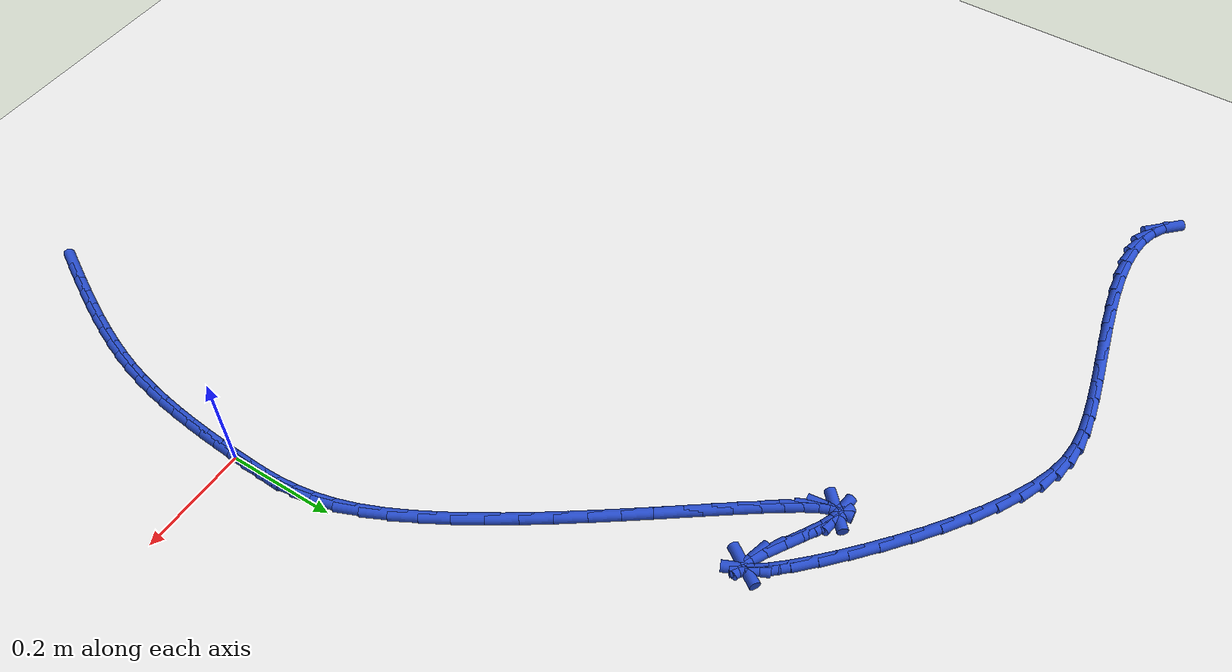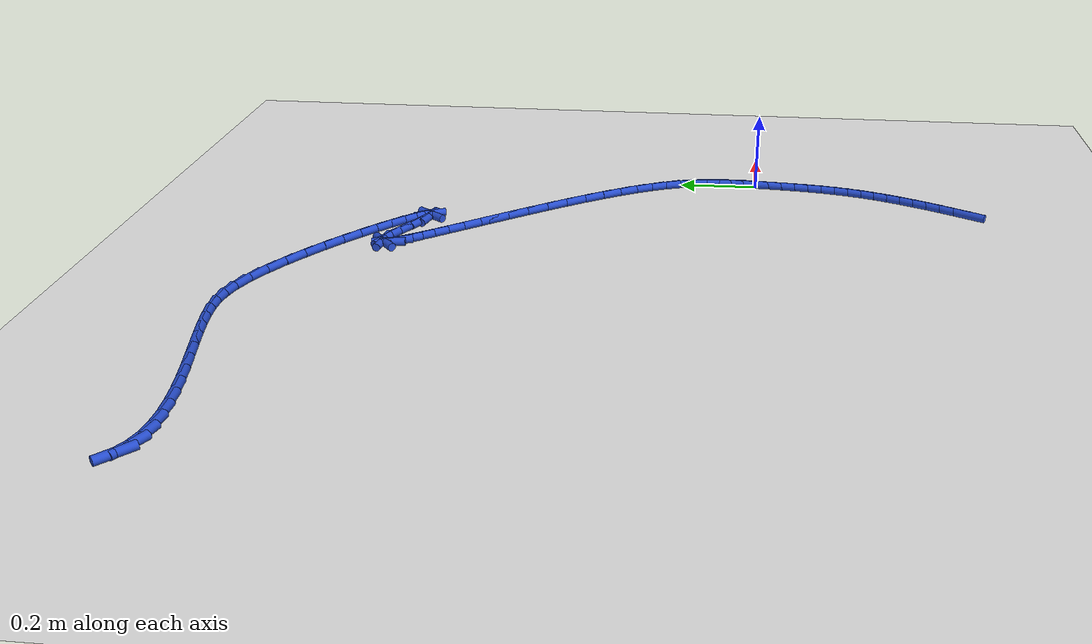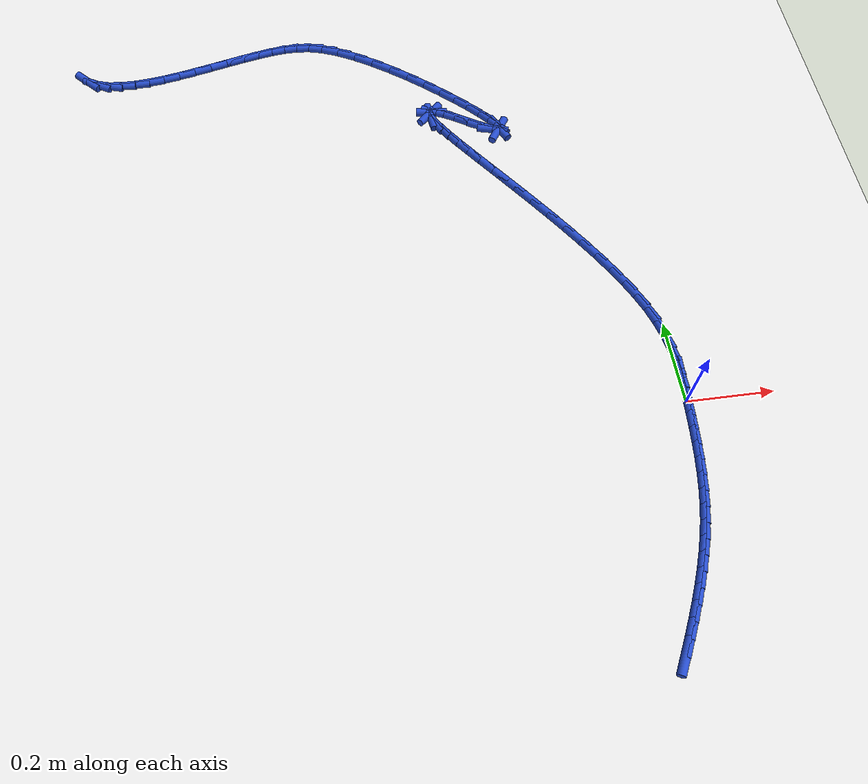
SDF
<sdf version="1.6">
 <world name="default">
  <model name="ground_plane">
   <static>1</static>
   <link name="link">
    <collision name="collision">
     <geometry><plane><normal>0 0 1</normal><size>100 100</size></plane></geometry>
     <surface><friction><ode><mu>100</mu><mu2>50</mu2></ode></friction></surface>
    </collision>
    <visual name="visual">
     <cast_shadows>0</cast_shadows>
     <geometry><plane><normal>0 0 1</normal><size>100 100</size></plane></geometry>
     <material>
      <script><uri>file://media/materials/scripts/gazebo.material</uri><name>Gazebo/WhiteGlow</name></script>
     </material>
    </visual>
   </link>
  </model>
  <model name="line">
   <link name="link_0">
    <pose>8.673617379884035e-18 6.938893903907228e-18 0.01 0 1.57 1.523138118637967</pose>
    <collision name="collision">
     <geometry><cylinder><radius>0.01</radius><length>0.08</length></cylinder></geometry>
    </collision>
    <visual name="visual">
     <material>
      <script><name>Gazebo/Blue</name><uri>file://media/materials/scripts/gazebo.material</uri></script>
     </material>
     <geometry><cylinder><radius>0.01</radius><length>0.08</length></cylinder></geometry>
    </visual>
   </link>
   <link name="link_1">
    <pose>0.001585584483484348 0.03324472141092138 0.01 0 1.57 1.5499778389324392</pose>
    <collision name="collision">
     <geometry><cylinder><radius>0.01</radius><length>0.08</length></cylinder></geometry>
    </collision>
    <visual name="visual">
     <material>
      <script><name>Gazebo/Blue</name><uri>file://media/materials/scripts/gazebo.material</uri></script>
     </material>
     <geometry><cylinder><radius>0.01</radius><length>0.08</length></cylinder></geometry>
    </visual>
   </link>
   <link name="link_2">
    <pose>0.002270491347331482 0.06613894106540857 0.01 0 1.57 -1.5463468351426486</pose>
    <collision name="collision">
     <geometry><cylinder><radius>0.01</radius><length>0.08</length></cylinder></geometry>
    </collision>
    <visual name="visual">
     <material>
      <script><name>Gazebo/Blue</name><uri>file://media/materials/scripts/gazebo.material</uri></script>
     </material>
     <geometry><cylinder><radius>0.01</radius><length>0.08</length></cylinder></geometry>
    </visual>
   </link>
   <link name="link_3">
    <pose>0.0014635920974431383 0.09913506519120466 0.01 0 1.57 -1.4848743740156531</pose>
    <collision name="collision">
     <geometry><cylinder><radius>0.01</radius><length>0.08</length></cylinder></geometry>
    </collision>
    <visual name="visual">
     <material>
      <script><name>Gazebo/Blue</name><uri>file://media/materials/scripts/gazebo.material</uri></script>
     </material>
     <geometry><cylinder><radius>0.01</radius><length>0.08</length></cylinder></geometry>
    </visual>
   </link>
   <link name="link_4">
    <pose>-0.001426241760278957 0.13268550001605264 0.01 0 1.57 -1.4111606628722124</pose>
    <collision name="collision">
     <geometry><cylinder><radius>0.01</radius><length>0.08</length></cylinder></geometry>
    </collision>
    <visual name="visual">
     <material>
      <script><name>Gazebo/Blue</name><uri>file://media/materials/scripts/gazebo.material</uri></script>
     </material>
     <geometry><cylinder><radius>0.01</radius><length>0.08</length></cylinder></geometry>
    </visual>
   </link>
   <link name="link_5">
    <pose>-0.0069901387199330835 0.16724265176769548 0.01 0 1.57 -1.3303954426050388</pose>
    <collision name="collision">
     <geometry><cylinder><radius>0.01</radius><length>0.08</length></cylinder></geometry>
    </collision>
    <visual name="visual">
     <material>
      <script><name>Gazebo/Blue</name><uri>file://media/materials/scripts/gazebo.material</uri></script>
     </material>
     <geometry><cylinder><radius>0.01</radius><length>0.08</length></cylinder></geometry>
    </visual>
   </link>
   <link name="link_6">
    <pose>-0.01581922727561751 0.20325892667387624 0.01 0 1.57 -1.2480303315702033</pose>
    <collision name="collision">
     <geometry><cylinder><radius>0.01</radius><length>0.08</length></cylinder></geometry>
    </collision>
    <visual name="visual">
     <material>
      <script><name>Gazebo/Blue</name><uri>file://media/materials/scripts/gazebo.material</uri></script>
     </material>
     <geometry><cylinder><radius>0.01</radius><length>0.08</length></cylinder></geometry>
    </visual>
   </link>
   <link name="link_7">
    <pose>-0.028504635921430512 0.24118673096233786 0.01 0 1.57 -1.170263766637879</pose>
    <collision name="collision">
     <geometry><cylinder><radius>0.01</radius><length>0.08</length></cylinder></geometry>
    </collision>
    <visual name="visual">
     <material>
      <script><name>Gazebo/Blue</name><uri>file://media/materials/scripts/gazebo.material</uri></script>
     </material>
     <geometry><cylinder><radius>0.01</radius><length>0.08</length></cylinder></geometry>
    </visual>
   </link>
   <link name="link_8">
    <pose>-0.045530404801527875 0.28139674451726765 0.01 0 1.57 -1.108227529056862</pose>
    <collision name="collision">
     <geometry><cylinder><radius>0.01</radius><length>0.08</length></cylinder></geometry>
    </collision>
    <visual name="visual">
     <material>
      <script><name>Gazebo/Blue</name><uri>file://media/materials/scripts/gazebo.material</uri></script>
     </material>
     <geometry><cylinder><radius>0.01</radius><length>0.08</length></cylinder></geometry>
    </visual>
   </link>
   <link name="link_9">
    <pose>-0.0666113562889491 0.32367260525362546 0.01 0 1.57 -1.0612071020007114</pose>
    <collision name="collision">
     <geometry><cylinder><radius>0.01</radius><length>0.08</length></cylinder></geometry>
    </collision>
    <visual name="visual">
     <material>
      <script><name>Gazebo/Blue</name><uri>file://media/materials/scripts/gazebo.material</uri></script>
     </material>
     <geometry><cylinder><radius>0.01</radius><length>0.08</length></cylinder></geometry>
    </visual>
   </link>
   <link name="link_10">
    <pose>-0.09112605837543512 0.3675413326857432 0.01 0 1.57 -1.0249504982867321</pose>
    <collision name="collision">
     <geometry><cylinder><radius>0.01</radius><length>0.08</length></cylinder></geometry>
    </collision>
    <visual name="visual">
     <material>
      <script><name>Gazebo/Blue</name><uri>file://media/materials/scripts/gazebo.material</uri></script>
     </material>
     <geometry><cylinder><radius>0.01</radius><length>0.08</length></cylinder></geometry>
    </visual>
   </link>
   <link name="link_11">
    <pose>-0.11845166703816948 0.41252886872439537 0.01 0 1.57 -0.9966939153665987</pose>
    <collision name="collision">
     <geometry><cylinder><radius>0.01</radius><length>0.08</length></cylinder></geometry>
    </collision>
    <visual name="visual">
     <material>
      <script><name>Gazebo/Blue</name><uri>file://media/materials/scripts/gazebo.material</uri></script>
     </material>
     <geometry><cylinder><radius>0.01</radius><length>0.08</length></cylinder></geometry>
    </visual>
   </link>
   <link name="link_12">
    <pose>-0.14796533825433575 0.4581611552803567 0.01 0 1.57 -0.9746226463821942</pose>
    <collision name="collision">
     <geometry><cylinder><radius>0.01</radius><length>0.08</length></cylinder></geometry>
    </collision>
    <visual name="visual">
     <material>
      <script><name>Gazebo/Blue</name><uri>file://media/materials/scripts/gazebo.material</uri></script>
     </material>
     <geometry><cylinder><radius>0.01</radius><length>0.08</length></cylinder></geometry>
    </visual>
   </link>
   <link name="link_13">
    <pose>-0.1790442280011174 0.5039641342644017 0.01 0 1.57 -0.9575446194777869</pose>
    <collision name="collision">
     <geometry><cylinder><radius>0.01</radius><length>0.08</length></cylinder></geometry>
    </collision>
    <visual name="visual">
     <material>
      <script><name>Gazebo/Blue</name><uri>file://media/materials/scripts/gazebo.material</uri></script>
     </material>
     <geometry><cylinder><radius>0.01</radius><length>0.08</length></cylinder></geometry>
    </visual>
   </link>
   <link name="link_14">
    <pose>-0.21106549225569787 0.549463747587305 0.01 0 1.57 -0.9447026504581928</pose>
    <collision name="collision">
     <geometry><cylinder><radius>0.01</radius><length>0.08</length></cylinder></geometry>
    </collision>
    <visual name="visual">
     <material>
      <script><name>Gazebo/Blue</name><uri>file://media/materials/scripts/gazebo.material</uri></script>
     </material>
     <geometry><cylinder><radius>0.01</radius><length>0.08</length></cylinder></geometry>
    </visual>
   </link>
   <link name="link_15">
    <pose>-0.24340628699526076 0.5941859371598409 0.01 0 1.57 -0.935673681147409</pose>
    <collision name="collision">
     <geometry><cylinder><radius>0.01</radius><length>0.08</length></cylinder></geometry>
    </collision>
    <visual name="visual">
     <material>
      <script><name>Gazebo/Blue</name><uri>file://media/materials/scripts/gazebo.material</uri></script>
     </material>
     <geometry><cylinder><radius>0.01</radius><length>0.08</length></cylinder></geometry>
    </visual>
   </link>
   <link name="link_16">
    <pose>-0.2754437681969896 0.6376566448927845 0.01 0 1.57 -0.9303307999203727</pose>
    <collision name="collision">
     <geometry><cylinder><radius>0.01</radius><length>0.08</length></cylinder></geometry>
    </collision>
    <visual name="visual">
     <material>
      <script><name>Gazebo/Blue</name><uri>file://media/materials/scripts/gazebo.material</uri></script>
     </material>
     <geometry><cylinder><radius>0.01</radius><length>0.08</length></cylinder></geometry>
    </visual>
   </link>
   <link name="link_17">
    <pose>-0.30655509183806806 0.6794018126969104 0.01 0 1.57 -0.928864554065546</pose>
    <collision name="collision">
     <geometry><cylinder><radius>0.01</radius><length>0.08</length></cylinder></geometry>
    </collision>
    <visual name="visual">
     <material>
      <script><name>Gazebo/Blue</name><uri>file://media/materials/scripts/gazebo.material</uri></script>
     </material>
     <geometry><cylinder><radius>0.01</radius><length>0.08</length></cylinder></geometry>
    </visual>
   </link>
   <link name="link_18">
    <pose>-0.33611741389567934 0.7189473824829925 0.01 0 1.57 -0.9318838796647777</pose>
    <collision name="collision">
     <geometry><cylinder><radius>0.01</radius><length>0.08</length></cylinder></geometry>
    </collision>
    <visual name="visual">
     <material>
      <script><name>Gazebo/Blue</name><uri>file://media/materials/scripts/gazebo.material</uri></script>
     </material>
     <geometry><cylinder><radius>0.01</radius><length>0.08</length></cylinder></geometry>
    </visual>
   </link>
   <link name="link_19">
    <pose>-0.3635078903470071 0.7558192961618062 0.01 0 1.57 -0.9406612782921225</pose>
    <collision name="collision">
     <geometry><cylinder><radius>0.01</radius><length>0.08</length></cylinder></geometry>
    </collision>
    <visual name="visual">
     <material>
      <script><name>Gazebo/Blue</name><uri>file://media/materials/scripts/gazebo.material</uri></script>
     </material>
     <geometry><cylinder><radius>0.01</radius><length>0.08</length></cylinder></geometry>
    </visual>
   </link>
   <link name="link_20">
    <pose>-0.3881036771692349 0.7895434956441257 0.01 0 1.57 -0.9576986605762746</pose>
    <collision name="collision">
     <geometry><cylinder><radius>0.01</radius><length>0.08</length></cylinder></geometry>
    </collision>
    <visual name="visual">
     <material>
      <script><name>Gazebo/Blue</name><uri>file://media/materials/scripts/gazebo.material</uri></script>
     </material>
     <geometry><cylinder><radius>0.01</radius><length>0.08</length></cylinder></geometry>
    </visual>
   </link>
   <link name="link_21">
    <pose>-0.4092819303395462 0.8196459228407256 0.01 0 1.57 -0.9881328618419942</pose>
    <collision name="collision">
     <geometry><cylinder><radius>0.01</radius><length>0.08</length></cylinder></geometry>
    </collision>
    <visual name="visual">
     <material>
      <script><name>Gazebo/Blue</name><uri>file://media/materials/scripts/gazebo.material</uri></script>
     </material>
     <geometry><cylinder><radius>0.01</radius><length>0.08</length></cylinder></geometry>
    </visual>
   </link>
   <link name="link_22">
    <pose>-0.4264198058351244 0.8456525196623805 0.01 0 1.57 -1.043769909391207</pose>
    <collision name="collision">
     <geometry><cylinder><radius>0.01</radius><length>0.08</length></cylinder></geometry>
    </collision>
    <visual name="visual">
     <material>
      <script><name>Gazebo/Blue</name><uri>file://media/materials/scripts/gazebo.material</uri></script>
     </material>
     <geometry><cylinder><radius>0.01</radius><length>0.08</length></cylinder></geometry>
    </visual>
   </link>
   <link name="link_23">
    <pose>-0.4388944596331535 0.8670892280198653 0.01 0 1.57 -1.1575283264766851</pose>
    <collision name="collision">
     <geometry><cylinder><radius>0.01</radius><length>0.08</length></cylinder></geometry>
    </collision>
    <visual name="visual">
     <material>
      <script><name>Gazebo/Blue</name><uri>file://media/materials/scripts/gazebo.material</uri></script>
     </material>
     <geometry><cylinder><radius>0.01</radius><length>0.08</length></cylinder></geometry>
    </visual>
   </link>
   <link name="link_24">
    <pose>-0.44608304771081664 0.8834819898239545 0.01 0 1.57 -1.4536608129962254</pose>
    <collision name="collision">
     <geometry><cylinder><radius>0.01</radius><length>0.08</length></cylinder></geometry>
    </collision>
    <visual name="visual">
     <material>
      <script><name>Gazebo/Blue</name><uri>file://media/materials/scripts/gazebo.material</uri></script>
     </material>
     <geometry><cylinder><radius>0.01</radius><length>0.08</length></cylinder></geometry>
    </visual>
   </link>
   <link name="link_25">
    <pose>-0.44736272604529714 0.8943567469854222 0.01 0 1.57 0.7489673832095932</pose>
    <collision name="collision">
     <geometry><cylinder><radius>0.01</radius><length>0.08</length></cylinder></geometry>
    </collision>
    <visual name="visual">
     <material>
      <script><name>Gazebo/Blue</name><uri>file://media/materials/scripts/gazebo.material</uri></script>
     </material>
     <geometry><cylinder><radius>0.01</radius><length>0.08</length></cylinder></geometry>
    </visual>
   </link>
   <link name="link_26">
    <pose>-0.44211065061377897 0.8992394414150439 0.01 0 1.57 -0.12694073009909124</pose>
    <collision name="collision">
     <geometry><cylinder><radius>0.01</radius><length>0.08</length></cylinder></geometry>
    </collision>
    <visual name="visual">
     <material>
      <script><name>Gazebo/Blue</name><uri>file://media/materials/scripts/gazebo.material</uri></script>
     </material>
     <geometry><cylinder><radius>0.01</radius><length>0.08</length></cylinder></geometry>
    </visual>
   </link>
   <link name="link_27">
    <pose>-0.42970397739344535 0.8976560150235933 0.01 0 1.57 -0.3995753435187933</pose>
    <collision name="collision">
     <geometry><cylinder><radius>0.01</radius><length>0.08</length></cylinder></geometry>
    </collision>
    <visual name="visual">
     <material>
      <script><name>Gazebo/Blue</name><uri>file://media/materials/scripts/gazebo.material</uri></script>
     </material>
     <geometry><cylinder><radius>0.01</radius><length>0.08</length></cylinder></geometry>
    </visual>
   </link>
   <link name="link_28">
    <pose>-0.40951986236147986 0.8891324097218452 0.01 0 1.57 -0.5057709338530939</pose>
    <collision name="collision">
     <geometry><cylinder><radius>0.01</radius><length>0.08</length></cylinder></geometry>
    </collision>
    <visual name="visual">
     <material>
      <script><name>Gazebo/Blue</name><uri>file://media/materials/scripts/gazebo.material</uri></script>
     </material>
     <geometry><cylinder><radius>0.01</radius><length>0.08</length></cylinder></geometry>
    </visual>
   </link>
   <link name="link_29">
    <pose>-0.3812875806829965 0.8734968210229603 0.01 0 1.57 -0.5407796485388793</pose>
    <collision name="collision">
     <geometry><cylinder><radius>0.01</radius><length>0.08</length></cylinder></geometry>
    </collision>
    <visual name="visual">
     <material>
      <script><name>Gazebo/Blue</name><uri>file://media/materials/scripts/gazebo.material</uri></script>
     </material>
     <geometry><cylinder><radius>0.01</radius><length>0.08</length></cylinder></geometry>
    </visual>
   </link>
   <link name="link_30">
    <pose>-0.34850060639415553 0.8538085738640765 0.01 0 1.57 -0.5353574790282457</pose>
    <collision name="collision">
     <geometry><cylinder><radius>0.01</radius><length>0.08</length></cylinder></geometry>
    </collision>
    <visual name="visual">
     <material>
      <script><name>Gazebo/Blue</name><uri>file://media/materials/scripts/gazebo.material</uri></script>
     </material>
     <geometry><cylinder><radius>0.01</radius><length>0.08</length></cylinder></geometry>
    </visual>
   </link>
   <link name="link_31">
    <pose>-0.3169332386560779 0.8350848177884911 0.01 0 1.57 -0.4781612451844935</pose>
    <collision name="collision">
     <geometry><cylinder><radius>0.01</radius><length>0.08</length></cylinder></geometry>
    </collision>
    <visual name="visual">
     <material>
      <script><name>Gazebo/Blue</name><uri>file://media/materials/scripts/gazebo.material</uri></script>
     </material>
     <geometry><cylinder><radius>0.01</radius><length>0.08</length></cylinder></geometry>
    </visual>
   </link>
   <link name="link_32">
    <pose>-0.2923798101428956 0.8223593662075089 0.01 0 1.57 -0.24977682648921742</pose>
    <collision name="collision">
     <geometry><cylinder><radius>0.01</radius><length>0.08</length></cylinder></geometry>
    </collision>
    <visual name="visual">
     <material>
      <script><name>Gazebo/Blue</name><uri>file://media/materials/scripts/gazebo.material</uri></script>
     </material>
     <geometry><cylinder><radius>0.01</radius><length>0.08</length></cylinder></geometry>
    </visual>
   </link>
   <link name="link_33">
    <pose>-0.2786245325676537 0.8188503369821315 0.01 0 1.57 0.9764913637129256</pose>
    <collision name="collision">
     <geometry><cylinder><radius>0.01</radius><length>0.08</length></cylinder></geometry>
    </collision>
    <visual name="visual">
     <material>
      <script><name>Gazebo/Blue</name><uri>file://media/materials/scripts/gazebo.material</uri></script>
     </material>
     <geometry><cylinder><radius>0.01</radius><length>0.08</length></cylinder></geometry>
    </visual>
   </link>
   <link name="link_34">
    <pose>-0.2751925252135136 0.8239287087598621 0.01 0 1.57 -1.132956064692277</pose>
    <collision name="collision">
     <geometry><cylinder><radius>0.01</radius><length>0.08</length></cylinder></geometry>
    </collision>
    <visual name="visual">
     <material>
      <script><name>Gazebo/Blue</name><uri>file://media/materials/scripts/gazebo.material</uri></script>
     </material>
     <geometry><cylinder><radius>0.01</radius><length>0.08</length></cylinder></geometry>
    </visual>
   </link>
   <link name="link_35">
    <pose>-0.2810660630108827 0.8364751214996956 0.01 0 1.57 -0.9276327409792565</pose>
    <collision name="collision">
     <geometry><cylinder><radius>0.01</radius><length>0.08</length></cylinder></geometry>
    </collision>
    <visual name="visual">
     <material>
      <script><name>Gazebo/Blue</name><uri>file://media/materials/scripts/gazebo.material</uri></script>
     </material>
     <geometry><cylinder><radius>0.01</radius><length>0.08</length></cylinder></geometry>
    </visual>
   </link>
   <link name="link_36">
    <pose>-0.2952274208901677 0.855370215160626 0.01 0 1.57 -0.8444428398833422</pose>
    <collision name="collision">
     <geometry><cylinder><radius>0.01</radius><length>0.08</length></cylinder></geometry>
    </collision>
    <visual name="visual">
     <material>
      <script><name>Gazebo/Blue</name><uri>file://media/materials/scripts/gazebo.material</uri></script>
     </material>
     <geometry><cylinder><radius>0.01</radius><length>0.08</length></cylinder></geometry>
    </visual>
   </link>
   <link name="link_37">
    <pose>-0.3166588737817755 0.8794946297016479 0.01 0 1.57 -0.7952435227738177</pose>
    <collision name="collision">
     <geometry><cylinder><radius>0.01</radius><length>0.08</length></cylinder></geometry>
    </collision>
    <visual name="visual">
     <material>
      <script><name>Gazebo/Blue</name><uri>file://media/materials/scripts/gazebo.material</uri></script>
     </material>
     <geometry><cylinder><radius>0.01</radius><length>0.08</length></cylinder></geometry>
    </visual>
   </link>
   <link name="link_38">
    <pose>-0.3443426966161134 0.9077290050817559 0.01 0 1.57 -0.7590026643309477</pose>
    <collision name="collision">
     <geometry><cylinder><radius>0.01</radius><length>0.08</length></cylinder></geometry>
    </collision>
    <visual name="visual">
     <material>
      <script><name>Gazebo/Blue</name><uri>file://media/materials/scripts/gazebo.material</uri></script>
     </material>
     <geometry><cylinder><radius>0.01</radius><length>0.08</length></cylinder></geometry>
    </visual>
   </link>
   <link name="link_39">
    <pose>-0.3772611643235882 0.9389539812599442 0.01 0 1.57 -0.7279492977358222</pose>
    <collision name="collision">
     <geometry><cylinder><radius>0.01</radius><length>0.08</length></cylinder></geometry>
    </collision>
    <visual name="visual">
     <material>
      <script><name>Gazebo/Blue</name><uri>file://media/materials/scripts/gazebo.material</uri></script>
     </material>
     <geometry><cylinder><radius>0.01</radius><length>0.08</length></cylinder></geometry>
    </visual>
   </link>
   <link name="link_40">
    <pose>-0.414396551834607 0.9720501981952072 0.01 0 1.57 -0.6981806495435944</pose>
    <collision name="collision">
     <geometry><cylinder><radius>0.01</radius><length>0.08</length></cylinder></geometry>
    </collision>
    <visual name="visual">
     <material>
      <script><name>Gazebo/Blue</name><uri>file://media/materials/scripts/gazebo.material</uri></script>
     </material>
     <geometry><cylinder><radius>0.01</radius><length>0.08</length></cylinder></geometry>
    </visual>
   </link>
   <link name="link_41">
    <pose>-0.45473113407957666 1.0058982958465397 0.01 0 1.57 -0.6670611653092716</pose>
    <collision name="collision">
     <geometry><cylinder><radius>0.01</radius><length>0.08</length></cylinder></geometry>
    </collision>
    <visual name="visual">
     <material>
      <script><name>Gazebo/Blue</name><uri>file://media/materials/scripts/gazebo.material</uri></script>
     </material>
     <geometry><cylinder><radius>0.01</radius><length>0.08</length></cylinder></geometry>
    </visual>
   </link>
   <link name="link_42">
    <pose>-0.4972471859889044 1.039378914172936 0.01 0 1.57 -0.6321818000430323</pose>
    <collision name="collision">
     <geometry><cylinder><radius>0.01</radius><length>0.08</length></cylinder></geometry>
    </collision>
    <visual name="visual">
     <material>
      <script><name>Gazebo/Blue</name><uri>file://media/materials/scripts/gazebo.material</uri></script>
     </material>
     <geometry><cylinder><radius>0.01</radius><length>0.08</length></cylinder></geometry>
    </visual>
   </link>
   <link name="link_43">
    <pose>-0.540926982492997 1.07137269313339 0.01 0 1.57 -0.5906890601484294</pose>
    <collision name="collision">
     <geometry><cylinder><radius>0.01</radius><length>0.08</length></cylinder></geometry>
    </collision>
    <visual name="visual">
     <material>
      <script><name>Gazebo/Blue</name><uri>file://media/materials/scripts/gazebo.material</uri></script>
     </material>
     <geometry><cylinder><radius>0.01</radius><length>0.08</length></cylinder></geometry>
    </visual>
   </link>
   <link name="link_44">
    <pose>-0.5847527985222611 1.1007602726868964 0.01 0 1.57 -0.5385267230611902</pose>
    <collision name="collision">
     <geometry><cylinder><radius>0.01</radius><length>0.08</length></cylinder></geometry>
    </collision>
    <visual name="visual">
     <material>
      <script><name>Gazebo/Blue</name><uri>file://media/materials/scripts/gazebo.material</uri></script>
     </material>
     <geometry><cylinder><radius>0.01</radius><length>0.08</length></cylinder></geometry>
    </visual>
   </link>
   <link name="link_45">
    <pose>-0.6277069090071045 1.12642229279245 0.01 0 1.57 -0.4691797618339758</pose>
    <collision name="collision">
     <geometry><cylinder><radius>0.01</radius><length>0.08</length></cylinder></geometry>
    </collision>
    <visual name="visual">
     <material>
      <script><name>Gazebo/Blue</name><uri>file://media/materials/scripts/gazebo.material</uri></script>
     </material>
     <geometry><cylinder><radius>0.01</radius><length>0.08</length></cylinder></geometry>
    </visual>
   </link>
   <link name="link_46">
    <pose>-0.6687715888779338 1.147239393409045 0.01 0 1.57 -0.3714641257997168</pose>
    <collision name="collision">
     <geometry><cylinder><radius>0.01</radius><length>0.08</length></cylinder></geometry>
    </collision>
    <visual name="visual">
     <material>
      <script><name>Gazebo/Blue</name><uri>file://media/materials/scripts/gazebo.material</uri></script>
     </material>
     <geometry><cylinder><radius>0.01</radius><length>0.08</length></cylinder></geometry>
    </visual>
   </link>
   <link name="link_47">
    <pose>-0.7069542159719195 1.162113378735111 0.01 0 1.57 -0.24112769476727797</pose>
    <collision name="collision">
     <geometry><cylinder><radius>0.01</radius><length>0.08</length></cylinder></geometry>
    </collision>
    <visual name="visual">
     <material>
      <script><name>Gazebo/Blue</name><uri>file://media/materials/scripts/gazebo.material</uri></script>
     </material>
     <geometry><cylinder><radius>0.01</radius><length>0.08</length></cylinder></geometry>
    </visual>
   </link>
   <link name="link_48">
    <pose>-0.7422736971313185 1.1707988722166913 0.01 0 1.57 -0.09955596365791529</pose>
    <collision name="collision">
     <geometry><cylinder><radius>0.01</radius><length>0.08</length></cylinder></geometry>
    </collision>
    <visual name="visual">
     <material>
      <script><name>Gazebo/Blue</name><uri>file://media/materials/scripts/gazebo.material</uri></script>
     </material>
     <geometry><cylinder><radius>0.01</radius><length>0.08</length></cylinder></geometry>
    </visual>
   </link>
   <link name="link_49">
    <pose>-0.7760839575784624 1.1741760501655636 0.01 0 1.57 0.028852323744959447</pose>
    <collision name="collision">
     <geometry><cylinder><radius>0.01</radius><length>0.08</length></cylinder></geometry>
    </collision>
    <visual name="visual">
     <material>
      <script><name>Gazebo/Blue</name><uri>file://media/materials/scripts/gazebo.material</uri></script>
     </material>
     <geometry><cylinder><radius>0.01</radius><length>0.08</length></cylinder></geometry>
    </visual>
   </link>
   <link name="link_50">
    <pose>-0.8098302889282178 1.1732021198216802 0.01 0 1.57 0.12370660788881764</pose>
    <collision name="collision">
     <geometry><cylinder><radius>0.01</radius><length>0.08</length></cylinder></geometry>
    </collision>
    <visual name="visual">
     <material>
      <script><name>Gazebo/Blue</name><uri>file://media/materials/scripts/gazebo.material</uri></script>
     </material>
     <geometry><cylinder><radius>0.01</radius><length>0.08</length></cylinder></geometry>
    </visual>
   </link>
   <link name="link_51">
    <pose>-0.8449579827954521 1.1688342884249954 0.01 0 1.57 0.17986273192217148</pose>
    <collision name="collision">
     <geometry><cylinder><radius>0.01</radius><length>0.08</length></cylinder></geometry>
    </collision>
    <visual name="visual">
     <material>
      <script><name>Gazebo/Blue</name><uri>file://media/materials/scripts/gazebo.material</uri></script>
     </material>
     <geometry><cylinder><radius>0.01</radius><length>0.08</length></cylinder></geometry>
    </visual>
   </link>
   <link name="link_52">
    <pose>-0.8826260631650705 1.1619851872863178 0.01 0 1.57 0.21252568031824093</pose>
    <collision name="collision">
     <geometry><cylinder><radius>0.01</radius><length>0.08</length></cylinder></geometry>
    </collision>
    <visual name="visual">
     <material>
      <script><name>Gazebo/Blue</name><uri>file://media/materials/scripts/gazebo.material</uri></script>
     </material>
     <geometry><cylinder><radius>0.01</radius><length>0.08</length></cylinder></geometry>
    </visual>
   </link>
   <link name="link_53">
    <pose>-0.9226241938450315 1.153354218919929 0.01 0 1.57 0.2302559881334819</pose>
    <collision name="collision">
     <geometry><cylinder><radius>0.01</radius><length>0.08</length></cylinder></geometry>
    </collision>
    <visual name="visual">
     <material>
      <script><name>Gazebo/Blue</name><uri>file://media/materials/scripts/gazebo.material</uri></script>
     </material>
     <geometry><cylinder><radius>0.01</radius><length>0.08</length></cylinder></geometry>
    </visual>
   </link>
   <link name="link_54">
    <pose>-0.9643330592238658 1.1435771019453427 0.01 0 1.57 0.23588753970900553</pose>
    <collision name="collision">
     <geometry><cylinder><radius>0.01</radius><length>0.08</length></cylinder></geometry>
    </collision>
    <visual name="visual">
     <material>
      <script><name>Gazebo/Blue</name><uri>file://media/materials/scripts/gazebo.material</uri></script>
     </material>
     <geometry><cylinder><radius>0.01</radius><length>0.08</length></cylinder></geometry>
    </visual>
   </link>
   <link name="link_55">
    <pose>-1.0071332711896268 1.1332895436927193 0.01 0 1.57 0.23066592869244337</pose>
    <collision name="collision">
     <geometry><cylinder><radius>0.01</radius><length>0.08</length></cylinder></geometry>
    </collision>
    <visual name="visual">
     <material>
      <script><name>Gazebo/Blue</name><uri>file://media/materials/scripts/gazebo.material</uri></script>
     </material>
     <geometry><cylinder><radius>0.01</radius><length>0.08</length></cylinder></geometry>
    </visual>
   </link>
   <link name="link_56">
    <pose>-1.0504054416303683 1.1231272514922208 0.01 0 1.57 0.2146446117185</pose>
    <collision name="collision">
     <geometry><cylinder><radius>0.01</radius><length>0.08</length></cylinder></geometry>
    </collision>
    <visual name="visual">
     <material>
      <script><name>Gazebo/Blue</name><uri>file://media/materials/scripts/gazebo.material</uri></script>
     </material>
     <geometry><cylinder><radius>0.01</radius><length>0.08</length></cylinder></geometry>
    </visual>
   </link>
   <link name="link_57">
    <pose>-1.093530182434144 1.1137259326740079 0.01 0 1.57 0.1867736046197251</pose>
    <collision name="collision">
     <geometry><cylinder><radius>0.01</radius><length>0.08</length></cylinder></geometry>
    </collision>
    <visual name="visual">
     <material>
      <script><name>Gazebo/Blue</name><uri>file://media/materials/scripts/gazebo.material</uri></script>
     </material>
     <geometry><cylinder><radius>0.01</radius><length>0.08</length></cylinder></geometry>
    </visual>
   </link>
   <link name="link_58">
    <pose>-1.1358881054890078 1.105721294568242 0.01 0 1.57 0.14474577143568657</pose>
    <collision name="collision">
     <geometry><cylinder><radius>0.01</radius><length>0.08</length></cylinder></geometry>
    </collision>
    <visual name="visual">
     <material>
      <script><name>Gazebo/Blue</name><uri>file://media/materials/scripts/gazebo.material</uri></script>
     </material>
     <geometry><cylinder><radius>0.01</radius><length>0.08</length></cylinder></geometry>
    </visual>
   </link>
   <link name="link_59">
    <pose>-1.1768598226830136 1.0997490445050842 0.01 0 1.57 0.08459320899463034</pose>
    <collision name="collision">
     <geometry><cylinder><radius>0.01</radius><length>0.08</length></cylinder></geometry>
    </collision>
    <visual name="visual">
     <material>
      <script><name>Gazebo/Blue</name><uri>file://media/materials/scripts/gazebo.material</uri></script>
     </material>
     <geometry><cylinder><radius>0.01</radius><length>0.08</length></cylinder></geometry>
    </visual>
   </link>
   <link name="link_60">
    <pose>-1.2158259459042147 1.0964448898146952 0.01 0 1.57 9.685646825418196e-06</pose>
    <collision name="collision">
     <geometry><cylinder><radius>0.01</radius><length>0.08</length></cylinder></geometry>
    </collision>
    <visual name="visual">
     <material>
      <script><name>Gazebo/Blue</name><uri>file://media/materials/scripts/gazebo.material</uri></script>
     </material>
     <geometry><cylinder><radius>0.01</radius><length>0.08</length></cylinder></geometry>
    </visual>
   </link>
   <link name="link_61">
    <pose>-1.2521670870406656 1.096444537827237 0.01 0 1.57 -0.11846214110581711</pose>
    <collision name="collision">
     <geometry><cylinder><radius>0.01</radius><length>0.08</length></cylinder></geometry>
    </collision>
    <visual name="visual">
     <material>
      <script><name>Gazebo/Blue</name><uri>file://media/materials/scripts/gazebo.material</uri></script>
     </material>
     <geometry><cylinder><radius>0.01</radius><length>0.08</length></cylinder></geometry>
    </visual>
   </link>
   <link name="link_62">
    <pose>-1.28526385798042 1.1003836958728703 0.01 0 1.57 -0.28341827992853147</pose>
    <collision name="collision">
     <geometry><cylinder><radius>0.01</radius><length>0.08</length></cylinder></geometry>
    </collision>
    <visual name="visual">
     <material>
      <script><name>Gazebo/Blue</name><uri>file://media/materials/scripts/gazebo.material</uri></script>
     </material>
     <geometry><cylinder><radius>0.01</radius><length>0.08</length></cylinder></geometry>
    </visual>
   </link>
   <link name="link_63">
    <pose>-1.3144968706115312 1.1088980712817562 0.01 0 1.57 -0.506337869939438</pose>
    <collision name="collision">
     <geometry><cylinder><radius>0.01</radius><length>0.08</length></cylinder></geometry>
    </collision>
    <visual name="visual">
     <material>
      <script><name>Gazebo/Blue</name><uri>file://media/materials/scripts/gazebo.material</uri></script>
     </material>
     <geometry><cylinder><radius>0.01</radius><length>0.08</length></cylinder></geometry>
    </visual>
   </link>
   <link name="link_64">
    <pose>-1.3392467368220535 1.122623371384056 0.01 0 1.57 -0.7834756525722651</pose>
    <collision name="collision">
     <geometry><cylinder><radius>0.01</radius><length>0.08</length></cylinder></geometry>
    </collision>
    <visual name="visual">
     <material>
      <script><name>Gazebo/Blue</name><uri>file://media/materials/scripts/gazebo.material</uri></script>
     </material>
     <geometry><cylinder><radius>0.01</radius><length>0.08</length></cylinder></geometry>
    </visual>
   </link>
   <link name="link_234">
    <pose>-0.15146134553250373 -0.5347069588655949 0.01 0 1.57 1.0824112077152293</pose>
    <collision name="collision">
     <geometry><cylinder><radius>0.01</radius><length>0.08</length></cylinder></geometry>
    </collision>
    <visual name="visual">
     <material>
      <script><name>Gazebo/Blue</name><uri>file://media/materials/scripts/gazebo.material</uri></script>
     </material>
     <geometry><cylinder><radius>0.01</radius><length>0.08</length></cylinder></geometry>
    </visual>
   </link>
   <link name="link_235">
    <pose>-0.1340397297478168 -0.5019173787532374 0.01 0 1.57 1.099512163203352</pose>
    <collision name="collision">
     <geometry><cylinder><radius>0.01</radius><length>0.08</length></cylinder></geometry>
    </collision>
    <visual name="visual">
     <material>
      <script><name>Gazebo/Blue</name><uri>file://media/materials/scripts/gazebo.material</uri></script>
     </material>
     <geometry><cylinder><radius>0.01</radius><length>0.08</length></cylinder></geometry>
    </visual>
   </link>
   <link name="link_236">
    <pose>-0.11744500056857086 -0.4693520331609727 0.01 0 1.57 1.1157093024525382</pose>
    <collision name="collision">
     <geometry><cylinder><radius>0.01</radius><length>0.08</length></cylinder></geometry>
    </collision>
    <visual name="visual">
     <material>
      <script><name>Gazebo/Blue</name><uri>file://media/materials/scripts/gazebo.material</uri></script>
     </material>
     <geometry><cylinder><radius>0.01</radius><length>0.08</length></cylinder></geometry>
    </visual>
   </link>
   <link name="link_237">
    <pose>-0.1016788824264252 -0.4371331886225951 0.01 0 1.57 1.1366445165024166</pose>
    <collision name="collision">
     <geometry><cylinder><radius>0.01</radius><length>0.08</length></cylinder></geometry>
    </collision>
    <visual name="visual">
     <material>
      <script><name>Gazebo/Blue</name><uri>file://media/materials/scripts/gazebo.material</uri></script>
     </material>
     <geometry><cylinder><radius>0.01</radius><length>0.08</length></cylinder></geometry>
    </visual>
   </link>
   <link name="link_238">
    <pose>-0.08683326686680332 -0.4051145697579453 0.01 0 1.57 1.1627557160837498</pose>
    <collision name="collision">
     <geometry><cylinder><radius>0.01</radius><length>0.08</length></cylinder></geometry>
    </collision>
    <visual name="visual">
     <material>
      <script><name>Gazebo/Blue</name><uri>file://media/materials/scripts/gazebo.material</uri></script>
     </material>
     <geometry><cylinder><radius>0.01</radius><length>0.08</length></cylinder></geometry>
    </visual>
   </link>
   <link name="link_239">
    <pose>-0.07300650584679876 -0.37313066034347436 0.01 0 1.57 1.193954914726322</pose>
    <collision name="collision">
     <geometry><cylinder><radius>0.01</radius><length>0.08</length></cylinder></geometry>
    </collision>
    <visual name="visual">
     <material>
      <script><name>Gazebo/Blue</name><uri>file://media/materials/scripts/gazebo.material</uri></script>
     </material>
     <geometry><cylinder><radius>0.01</radius><length>0.08</length></cylinder></geometry>
    </visual>
   </link>
   <link name="link_240">
    <pose>-0.060296951323505356 -0.34101594415563485 0.01 0 1.57 1.2300008574286714</pose>
    <collision name="collision">
     <geometry><cylinder><radius>0.01</radius><length>0.08</length></cylinder></geometry>
    </collision>
    <visual name="visual">
     <material>
      <script><name>Gazebo/Blue</name><uri>file://media/materials/scripts/gazebo.material</uri></script>
     </material>
     <geometry><cylinder><radius>0.01</radius><length>0.08</length></cylinder></geometry>
    </visual>
   </link>
   <link name="link_241">
    <pose>-0.04880295525401591 -0.30860490497087617 0.01 0 1.57 1.2704822755254306</pose>
    <collision name="collision">
     <geometry><cylinder><radius>0.01</radius><length>0.08</length></cylinder></geometry>
    </collision>
    <visual name="visual">
     <material>
      <script><name>Gazebo/Blue</name><uri>file://media/materials/scripts/gazebo.material</uri></script>
     </material>
     <geometry><cylinder><radius>0.01</radius><length>0.08</length></cylinder></geometry>
    </visual>
   </link>
   <link name="link_242">
    <pose>-0.038622869595424304 -0.2757320265656506 0.01 0 1.57 1.314802088619732</pose>
    <collision name="collision">
     <geometry><cylinder><radius>0.01</radius><length>0.08</length></cylinder></geometry>
    </collision>
    <visual name="visual">
     <material>
      <script><name>Gazebo/Blue</name><uri>file://media/materials/scripts/gazebo.material</uri></script>
     </material>
     <geometry><cylinder><radius>0.01</radius><length>0.08</length></cylinder></geometry>
    </visual>
   </link>
   <link name="link_243">
    <pose>-0.02985474068006501 -0.24223223822997833 0.01 0 1.57 1.35955183588266</pose>
    <collision name="collision">
     <geometry><cylinder><radius>0.01</radius><length>0.08</length></cylinder></geometry>
    </collision>
    <visual name="visual">
     <material>
      <script><name>Gazebo/Blue</name><uri>file://media/materials/scripts/gazebo.material</uri></script>
     </material>
     <geometry><cylinder><radius>0.01</radius><length>0.08</length></cylinder></geometry>
    </visual>
   </link>
   <link name="link_244">
    <pose>-0.022523833958708155 -0.20804656298261923 0.01 0 1.57 1.3985426773187588</pose>
    <collision name="collision">
     <geometry><cylinder><radius>0.01</radius><length>0.08</length></cylinder></geometry>
    </collision>
    <visual name="visual">
     <material>
      <script><name>Gazebo/Blue</name><uri>file://media/materials/scripts/gazebo.material</uri></script>
     </material>
     <geometry><cylinder><radius>0.01</radius><length>0.08</length></cylinder></geometry>
    </visual>
   </link>
   <link name="link_245">
    <pose>-0.016488920850787948 -0.17335872456562285 0.01 0 1.57 1.431499079720344</pose>
    <collision name="collision">
     <geometry><cylinder><radius>0.01</radius><length>0.08</length></cylinder></geometry>
    </collision>
    <visual name="visual">
     <material>
      <script><name>Gazebo/Blue</name><uri>file://media/materials/scripts/gazebo.material</uri></script>
     </material>
     <geometry><cylinder><radius>0.01</radius><length>0.08</length></cylinder></geometry>
    </visual>
   </link>
   <link name="link_246">
    <pose>-0.011585593941654771 -0.1383862348379583 0.01 0 1.57 1.458931111751385</pose>
    <collision name="collision">
     <geometry><cylinder><radius>0.01</radius><length>0.08</length></cylinder></geometry>
    </collision>
    <visual name="visual">
     <material>
      <script><name>Gazebo/Blue</name><uri>file://media/materials/scripts/gazebo.material</uri></script>
     </material>
     <geometry><cylinder><radius>0.01</radius><length>0.08</length></cylinder></geometry>
    </visual>
   </link>
   <link name="link_247">
    <pose>-0.007649445816659009 -0.10334660565859469 0.01 0 1.57 1.4812274080871857</pose>
    <collision name="collision">
     <geometry><cylinder><radius>0.01</radius><length>0.08</length></cylinder></geometry>
    </collision>
    <visual name="visual">
     <material>
      <script><name>Gazebo/Blue</name><uri>file://media/materials/scripts/gazebo.material</uri></script>
     </material>
     <geometry><cylinder><radius>0.01</radius><length>0.08</length></cylinder></geometry>
    </visual>
   </link>
   <link name="link_248">
    <pose>-0.004516069061151036 -0.06845734888650101 0.01 0 1.57 1.498647339851543</pose>
    <collision name="collision">
     <geometry><cylinder><radius>0.01</radius><length>0.08</length></cylinder></geometry>
    </collision>
    <visual name="visual">
     <material>
      <script><name>Gazebo/Blue</name><uri>file://media/materials/scripts/gazebo.material</uri></script>
     </material>
     <geometry><cylinder><radius>0.01</radius><length>0.08</length></cylinder></geometry>
    </visual>
   </link>
   <link name="link_249">
    <pose>-0.0020210562604812323 -0.033935976380646354 0.01 0 1.57 1.5113116110562024</pose>
    <collision name="collision">
     <geometry><cylinder><radius>0.01</radius><length>0.08</length></cylinder></geometry>
    </collision>
    <visual name="visual">
     <material>
      <script><name>Gazebo/Blue</name><uri>file://media/materials/scripts/gazebo.material</uri></script>
     </material>
     <geometry><cylinder><radius>0.01</radius><length>0.08</length></cylinder></geometry>
    </visual>
   </link>
   <link name="link_250">
    <pose>1.9949319973733282e-17 1.8735013540549517e-16 0.01 0 1.57 1.519186639537133</pose>
    <collision name="collision">
     <geometry><cylinder><radius>0.01</radius><length>0.08</length></cylinder></geometry>
    </collision>
    <visual name="visual">
     <material>
      <script><name>Gazebo/Blue</name><uri>file://media/materials/scripts/gazebo.material</uri></script>
     </material>
     <geometry><cylinder><radius>0.01</radius><length>0.08</length></cylinder></geometry>
    </visual>
   </link>
   <link name="link_251">
    <pose>0.0017115071349423413 0.03313306839646958 0.01 0 1.57 1.5220577448285166</pose>
    <collision name="collision">
     <geometry><cylinder><radius>0.01</radius><length>0.08</length></cylinder></geometry>
    </collision>
    <visual name="visual">
     <material>
      <script><name>Gazebo/Blue</name><uri>file://media/materials/scripts/gazebo.material</uri></script>
     </material>
     <geometry><cylinder><radius>0.01</radius><length>0.08</length></cylinder></geometry>
    </visual>
   </link>
   <link name="link_252">
    <pose>0.0032778725589953546 0.06524571694979275 0.01 0 1.57 1.5205996371728219</pose>
    <collision name="collision">
     <geometry><cylinder><radius>0.01</radius><length>0.08</length></cylinder></geometry>
    </collision>
    <visual name="visual">
     <material>
      <script><name>Gazebo/Blue</name><uri>file://media/materials/scripts/gazebo.material</uri></script>
     </material>
     <geometry><cylinder><radius>0.01</radius><length>0.08</length></cylinder></geometry>
    </visual>
   </link>
  </model>
 </world>
</sdf>
